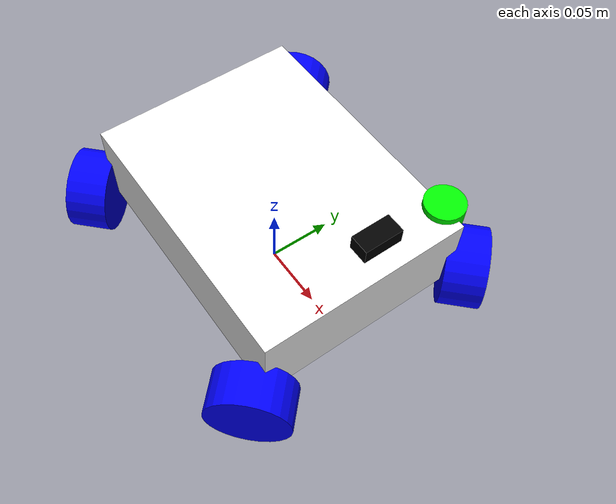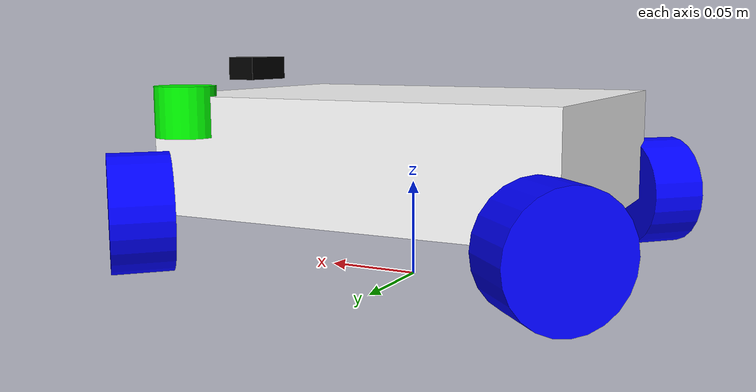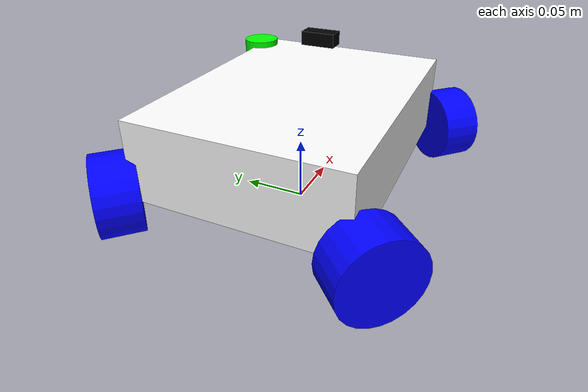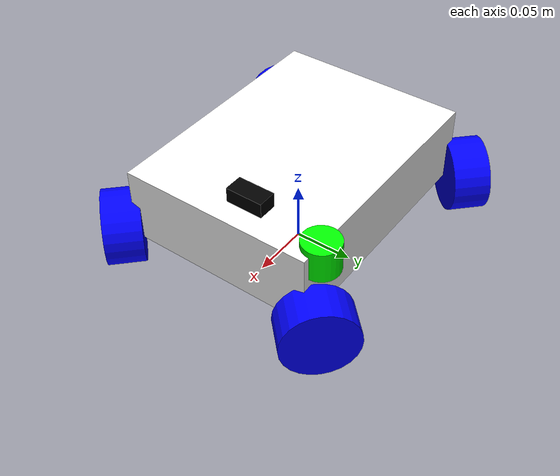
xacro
<?xml version="1.0"?>
<robot name="ar_ray_robot" xmlns:xacro="http://ros.org/wiki/xacro">

<link name="base_footprint"/>

<joint name="base_joint" type="fixed">
  <parent link="base_footprint"/>
  <child link="base_link"/>
  <origin xyz="0.0 0.0 0.010" rpy="0 0 0"/>
</joint>

<link name="base_link">
    <inertial>
        <mass value="1"/>
        <inertia ixx="100" ixy="0" ixz="0" iyy="100" iyz="0" izz="80" />
    </inertial>

    <visual>
        <origin xyz="0 0 .0575" />
        <geometry>
            <box size=".21 .16 .06" />
        </geometry>
        <material name="white">
            <color rgba="1 1 1 1"/>
        </material>
    </visual>

    <collision>
        <origin xyz="0 0 .0575" />
        <geometry>
            <box size=".21 .16 .06" />
        </geometry>
        <contact_coefficients mu="0" kp="1000.0" kd="1.0"/>
    </collision>
</link>

<link name="wheel0">
    <visual>
        <geometry>
            <cylinder length="0.03" radius="0.03"/>
        </geometry>
        <origin xyz="0 0 0" rpy="1.57 0 0"/>
        <material name="blue">
            <color rgba="0 0 1 1"/>
        </material>
    </visual>
</link>
<link name="wheel1">
    <visual>
        <geometry>
            <cylinder length="0.03" radius="0.03"/>
        </geometry>
        <origin xyz="0 0 0" rpy="1.57 0 0"/>
        <material name="blue">
            <color rgba="0 0 1 1"/>
        </material>
    </visual>
</link>
<link name="wheel2">
    <visual>
        <geometry>
            <cylinder length="0.03" radius="0.03"/>
        </geometry>
        <origin xyz="0 0 0" rpy="1.57 0 0"/>
        <material name="blue">
            <color rgba="0 0 1 1"/>
        </material>
    </visual>
</link>
<link name="wheel3">
    <visual>
        <geometry>
            <cylinder length="0.03" radius="0.03"/>
        </geometry>
        <origin xyz="0 0 0" rpy="1.57 0 0"/>
        <material name="blue">
            <color rgba="0 0 1 1"/>
        </material>
    </visual>
</link>

<link name="lidar">
    <visual>
        <geometry>
            <cylinder length="0.025" radius="0.015"/>
        </geometry>
        <origin xyz="0 0 0" rpy="0 0 0"/>
        <material name="green">
            <color rgba="0 1 0 1"/>
        </material>
    </visual>
</link>

<link name="imu">
    <visual>
        <origin xyz="0 0 0" />
        <geometry>
            <box size=".015 .030 .012" />
        </geometry>
        <material name="black">
            <color rgba="0 0 0 1"/>
        </material>
    </visual>
</link>

<!-- joint -->

<joint name="wheel0_connect" type="fixed">
    <origin xyz="${0.15*cos(radians(45))} ${0.13*sin(radians(45))} 0.03"  rpy="0 0 ${radians(135)}"/>
    <parent link="base_link"/>
    <child link="wheel0"/>
</joint>
<joint name="wheel1_connect" type="fixed">
    <origin xyz="${-0.15*cos(radians(45))} ${0.13*sin(radians(45))} 0.03" rpy="0 0 ${radians(45)}"/>
    <parent link="base_link"/>
    <child link="wheel1"/>
</joint>
<joint name="wheel2_connect" type="fixed">
    <origin xyz="${0.15*cos(radians(45))} ${-0.13*sin(radians(45))} 0.03" rpy="0 0 ${radians(45)}"/>
    <parent link="base_link"/>
    <child link="wheel2"/>
</joint>
<joint name="wheel3_connect" type="fixed">
    <origin xyz="${-0.15*cos(radians(45))} ${-0.13*sin(radians(45))} 0.03" rpy="0 0 ${radians(135)}"/>
    <parent link="base_link"/>
    <child link="wheel3"/>
</joint>
<joint name="lidar_connect" type="fixed">
    <origin xyz=".085 .08 .08" />
    <parent link="base_link"/>
    <child link="lidar"/>
</joint>
<joint name="imu_connect" type="fixed">
    <origin xyz=".085 .02 .10" />
    <parent link="base_link"/>
    <child link="imu"/>
</joint>
</robot>
